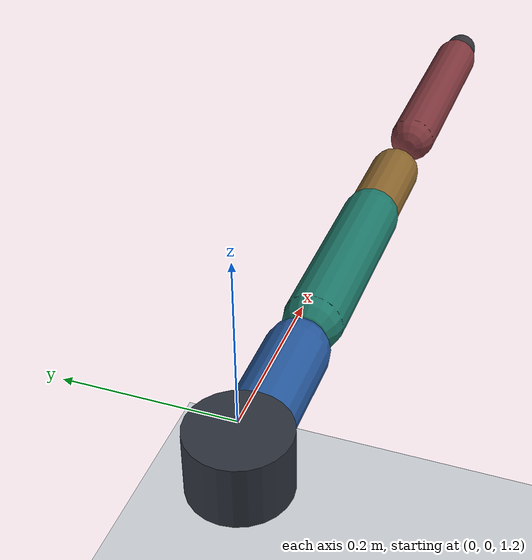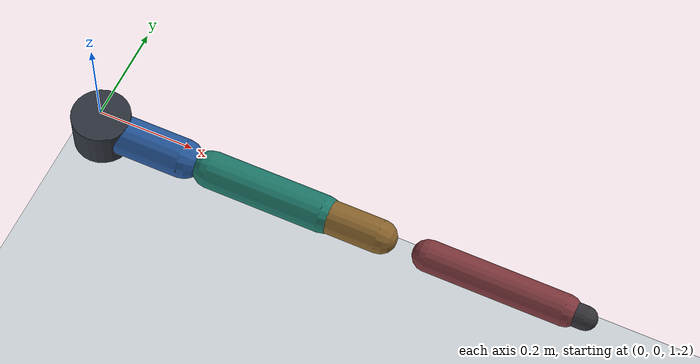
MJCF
<mujoco model="medical_arm_6dof_shadow">
  <compiler angle="radian"/>
  <option timestep="0.002" gravity="0 0 -9.81"/>
  <visual>
    <headlight ambient="0.45 0.45 0.45" diffuse="0.7 0.7 0.7" specular="0.2 0.2 0.2"/>
  </visual>
  <worldbody>
    <geom name="floor" type="plane" pos="0 0 0" size="1.2 1.2 0.02" rgba="0.82 0.84 0.86 1"/>
    <light name="key_light" pos="0.2 -0.8 1.8" dir="0 0 -1"/>
    <body name="base" pos="0 0 1.15">
      <geom type="cylinder" size="0.06 0.04" rgba="0.18 0.20 0.24 1" mass="0.5"/>
      <body name="jian_hengxiang_body" pos="0 0 0">
        <joint name="jian_hengxiang_joint" type="hinge" axis="0 0 1" range="-0.7854 1.5708" limited="true" damping="1.2"/>
        <geom type="capsule" fromto="0 0 0 0.18 0 0" size="0.04" rgba="0.15 0.35 0.62 1" mass="0.25"/>
        <body name="jian_zongxiang_body" pos="0.24 0 0">
          <joint name="jian_zongxiang_joint" type="hinge" axis="0 1 0" range="-0.5236 1.7453" limited="true" damping="1.2"/>
          <geom type="capsule" fromto="0 0 0 0.24 0 0" size="0.038" rgba="0.12 0.48 0.42 1" mass="0.25"/>
          <body name="jian_xuanzhuan_body" pos="0.18 0 0">
            <joint name="jian_xuanzhuan_joint" type="hinge" axis="1 0 0" range="-1.0472 1.0472" limited="true" damping="1.0"/>
            <geom type="capsule" fromto="0 0 0 0.18 0 0" size="0.034" rgba="0.55 0.40 0.18 1" mass="0.20"/>
            <body name="zhou_zongxiang_body" pos="0.28 0 0">
              <joint name="zhou_zongxiang_joint" type="hinge" axis="0 1 0" range="0.0 2.3562" limited="true" damping="1.0"/>
              <geom type="capsule" fromto="0 0 0 0.28 0 0" size="0.032" rgba="0.50 0.22 0.24 1" mass="0.20"/>
              <body name="wanbu_zongxiang_body" pos="0.12 0 0">
                <joint name="wanbu_zongxiang_joint" type="hinge" axis="0 1 0" range="-0.7854 0.7854" limited="true" damping="0.8"/>
                <geom type="capsule" fromto="0 0 0 0.12 0 0" size="0.026" rgba="0.32 0.30 0.46 1" mass="0.12"/>
                <body name="wanbu_hengxiang_body" pos="0.10 0 0">
                  <joint name="wanbu_hengxiang_joint" type="hinge" axis="0 0 1" range="-0.3491 0.5236" limited="true" damping="0.8"/>
                  <geom type="capsule" fromto="0 0 0 0.10 0 0" size="0.024" rgba="0.20 0.20 0.22 1" mass="0.10"/>
                  <site name="medical_arm_end_effector" pos="0.10 0 0" size="0.015" rgba="0.95 0.25 0.18 1"/>
                </body>
              </body>
            </body>
          </body>
        </body>
      </body>
    </body>
  </worldbody>
  <actuator>
    <position name="jian_hengxiang_joint_pos" joint="jian_hengxiang_joint" kp="35" kv="4" ctrlrange="-0.7854 1.5708"/>
    <position name="jian_zongxiang_joint_pos" joint="jian_zongxiang_joint" kp="35" kv="4" ctrlrange="-0.5236 1.7453"/>
    <position name="jian_xuanzhuan_joint_pos" joint="jian_xuanzhuan_joint" kp="30" kv="4" ctrlrange="-1.0472 1.0472"/>
    <position name="zhou_zongxiang_joint_pos" joint="zhou_zongxiang_joint" kp="30" kv="4" ctrlrange="0.0 2.3562"/>
    <position name="wanbu_zongxiang_joint_pos" joint="wanbu_zongxiang_joint" kp="20" kv="3" ctrlrange="-0.7854 0.7854"/>
    <position name="wanbu_hengxiang_joint_pos" joint="wanbu_hengxiang_joint" kp="20" kv="3" ctrlrange="-0.3491 0.5236"/>
  </actuator>
</mujoco>
